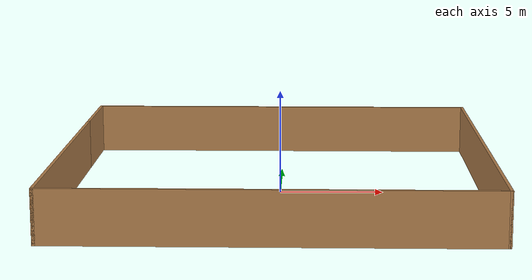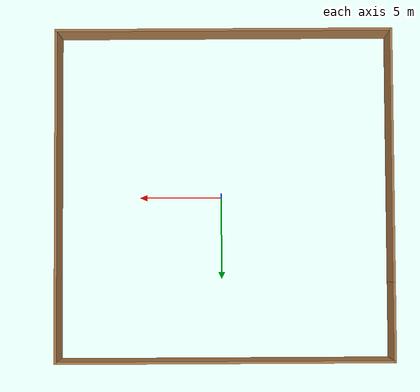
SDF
<?xml version='1.0'?>
<sdf version='1.7'>

  <model name='model'>
    <pose>-0.181031 -0.054427 0 0 -0 0</pose>
    <link name='Wall_0'>
      <collision name='Wall_0_Collision'>
        <geometry>
          <box>
            <size>15.25 0.15 2.5</size>
          </box>
        </geometry>
        <pose>0 0 1.25 0 -0 0</pose>
      </collision>
      <visual name='Wall_0_Visual'>
        <pose>0 0 1.25 0 -0 0</pose>
        <geometry>
          <box>
            <size>15.25 0.15 2.5</size>
          </box>
        </geometry>
        <material>
          <script>
            <uri>file://media/materials/scripts/gazebo.material</uri>
            <name>Gazebo/Wood</name>
          </script>
          <ambient>1 1 1 1</ambient>
        </material>
        <meta>
          <layer>0</layer>
        </meta>
      </visual>
      <pose>-10.05 -2.375 0 0 -0 -1.5708</pose>
    </link>
    <link name='Wall_1'>
      <collision name='Wall_1_Collision'>
        <geometry>
          <box>
            <size>20.25 0.15 2.5</size>
          </box>
        </geometry>
        <pose>0 0 1.25 0 -0 0</pose>
      </collision>
      <visual name='Wall_1_Visual'>
        <pose>0 0 1.25 0 -0 0</pose>
        <geometry>
          <box>
            <size>20.25 0.15 2.5</size>
          </box>
        </geometry>
        <material>
          <script>
            <uri>file://media/materials/scripts/gazebo.material</uri>
            <name>Gazebo/Wood</name>
          </script>
          <ambient>1 1 1 1</ambient>
        </material>
        <meta>
          <layer>0</layer>
        </meta>
      </visual>
      <pose>0 -9.925 0 0 -0 0</pose>
    </link>
    <link name='Wall_2'>
      <collision name='Wall_2_Collision'>
        <geometry>
          <box>
            <size>20 0.15 2.5</size>
          </box>
        </geometry>
        <pose>0 0 1.25 0 -0 0</pose>
      </collision>
      <visual name='Wall_2_Visual'>
        <pose>0 0 1.25 0 -0 0</pose>
        <geometry>
          <box>
            <size>20 0.15 2.5</size>
          </box>
        </geometry>
        <material>
          <script>
            <uri>file://media/materials/scripts/gazebo.material</uri>
            <name>Gazebo/Wood</name>
          </script>
          <ambient>1 1 1 1</ambient>
        </material>
        <meta>
          <layer>0</layer>
        </meta>
      </visual>
      <pose>10.05 0 0 0 -0 1.5708</pose>
    </link>
    <link name='Wall_3'>
      <collision name='Wall_3_Collision'>
        <geometry>
          <box>
            <size>20.25 0.15 2.5</size>
          </box>
        </geometry>
        <pose>0 0 1.25 0 -0 0</pose>
      </collision>
      <visual name='Wall_3_Visual'>
        <pose>0 0 1.25 0 -0 0</pose>
        <geometry>
          <box>
            <size>20.25 0.15 2.5</size>
          </box>
        </geometry>
        <material>
          <script>
            <uri>file://media/materials/scripts/gazebo.material</uri>
            <name>Gazebo/Wood</name>
          </script>
          <ambient>1 1 1 1</ambient>
        </material>
        <meta>
          <layer>0</layer>
        </meta>
      </visual>
      <pose>0 9.925 0 0 -0 3.14159</pose>
    </link>
    <link name='Wall_4'>
      <collision name='Wall_4_Collision'>
        <geometry>
          <box>
            <size>4.9 0.15 2.5</size>
          </box>
        </geometry>
        <pose>0 0 1.25 0 -0 0</pose>
      </collision>
      <visual name='Wall_4_Visual'>
        <pose>0 0 1.25 0 -0 0</pose>
        <geometry>
          <box>
            <size>4.9 0.15 2.5</size>
          </box>
        </geometry>
        <material>
          <script>
            <uri>file://media/materials/scripts/gazebo.material</uri>
            <name>Gazebo/Wood</name>
          </script>
          <ambient>1 1 1 1</ambient>
        </material>
        <meta>
          <layer>0</layer>
        </meta>
      </visual>
      <pose>-10.05 7.55 0 0 -0 -1.5708</pose>
    </link>
    <static>1</static>
    </model>

</sdf>
